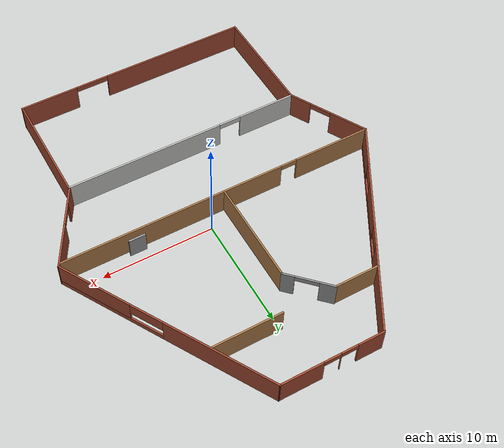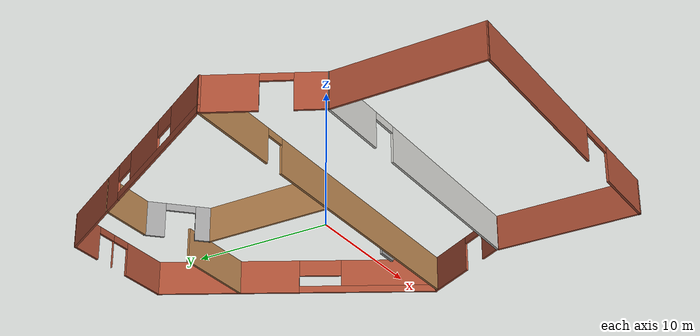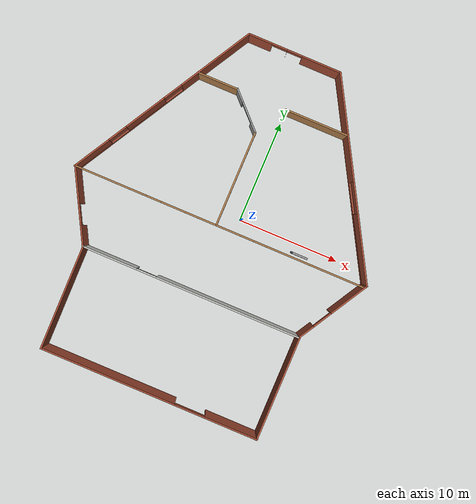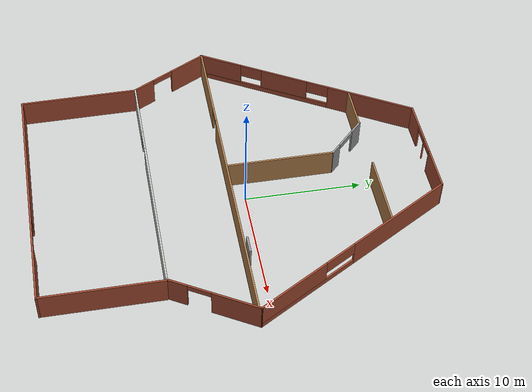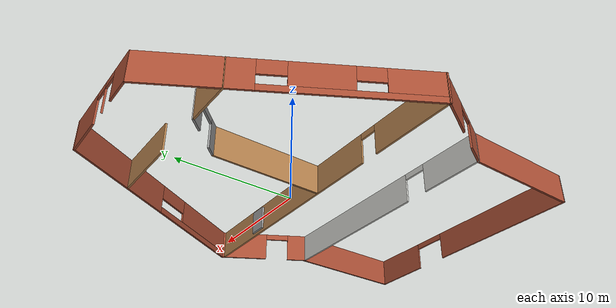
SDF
<?xml version='1.0'?>
<sdf version='1.6'>
  <model name='Delta_Shape_Building'>
    <pose frame=''>-1.45967 -0.955832 0 0 -0 0</pose>
    <link name='Door_7'>
      <collision name='Door_7_Collision'>
        <geometry>
          <box>
            <size>1.5 0.17 2</size>
          </box>
        </geometry>
        <pose frame=''>0 0 1 0 -0 0</pose>
      </collision>
      <visual name='Door_7_Visual'>
        <pose frame=''>0 0 1 0 -0 0</pose>
        <geometry>
          <box>
            <size>1.5 0.17 2</size>
          </box>
        </geometry>
        <material>
          <script>
            <uri>file://media/materials/scripts/gazebo.material</uri>
            <name>Gazebo/Grey</name>
          </script>
        </material>
      </visual>
      <pose frame=''>7.84353 0.055721 0 0 -0 0</pose>
    </link>
    <link name='Wall_11'>
      <pose frame=''>-9.53192 8.31685 0 0 0 -2.0944</pose>
      <visual name='Wall_11_Visual_0'>
        <pose frame=''>-6.20309 0 1.25 0 -0 0</pose>
        <geometry>
          <box>
            <size>7.84382 0.15 2.5</size>
          </box>
        </geometry>
        <material>
          <script>
            <uri>file://media/materials/scripts/gazebo.material</uri>
            <name>Gazebo/Bricks</name>
          </script>
          <ambient>1 1 1 1</ambient>
        </material>
        <meta>
          <layer>0</layer>
        </meta>
      </visual>
      <collision name='Wall_11_Collision_0'>
        <geometry>
          <box>
            <size>7.84382 0.15 2.5</size>
          </box>
        </geometry>
        <pose frame=''>-6.20309 0 1.25 0 -0 0</pose>
      </collision>
      <visual name='Wall_11_Visual_1'>
        <pose frame=''>3.92191 0 0.25 0 -0 0</pose>
        <geometry>
          <box>
            <size>12.4062 0.15 0.5</size>
          </box>
        </geometry>
        <material>
          <script>
            <uri>file://media/materials/scripts/gazebo.material</uri>
            <name>Gazebo/Bricks</name>
          </script>
          <ambient>1 1 1 1</ambient>
        </material>
        <meta>
          <layer>0</layer>
        </meta>
      </visual>
      <collision name='Wall_11_Collision_1'>
        <geometry>
          <box>
            <size>12.4062 0.15 0.5</size>
          </box>
        </geometry>
        <pose frame=''>3.92191 0 0.25 0 -0 0</pose>
      </collision>
      <visual name='Wall_11_Visual_2'>
        <pose frame=''>1.90604 0 1.5 0 -0 0</pose>
        <geometry>
          <box>
            <size>4.37444 0.15 2</size>
          </box>
        </geometry>
        <material>
          <script>
            <uri>file://media/materials/scripts/gazebo.material</uri>
            <name>Gazebo/Bricks</name>
          </script>
          <ambient>1 1 1 1</ambient>
        </material>
        <meta>
          <layer>0</layer>
        </meta>
      </visual>
      <collision name='Wall_11_Collision_2'>
        <geometry>
          <box>
            <size>4.37444 0.15 2</size>
          </box>
        </geometry>
        <pose frame=''>1.90604 0 1.5 0 -0 0</pose>
      </collision>
      <visual name='Wall_11_Visual_3'>
        <pose frame=''>8.10913 0 1.5 0 -0 0</pose>
        <geometry>
          <box>
            <size>4.03174 0.15 2</size>
          </box>
        </geometry>
        <material>
          <script>
            <uri>file://media/materials/scripts/gazebo.material</uri>
            <name>Gazebo/Bricks</name>
          </script>
          <ambient>1 1 1 1</ambient>
        </material>
        <meta>
          <layer>0</layer>
        </meta>
      </visual>
      <collision name='Wall_11_Collision_3'>
        <geometry>
          <box>
            <size>4.03174 0.15 2</size>
          </box>
        </geometry>
        <pose frame=''>8.10913 0 1.5 0 -0 0</pose>
      </collision>
      <visual name='Wall_11_Visual_4'>
        <pose frame=''>-1.28118 0 1.9 0 -0 0</pose>
        <geometry>
          <box>
            <size>2 0.15 1.2</size>
          </box>
        </geometry>
        <material>
          <script>
            <uri>file://media/materials/scripts/gazebo.material</uri>
            <name>Gazebo/Bricks</name>
          </script>
          <ambient>1 1 1 1</ambient>
        </material>
        <meta>
          <layer>0</layer>
        </meta>
      </visual>
      <collision name='Wall_11_Collision_4'>
        <geometry>
          <box>
            <size>2 0.15 1.2</size>
          </box>
        </geometry>
        <pose frame=''>-1.28118 0 1.9 0 -0 0</pose>
      </collision>
      <visual name='Wall_11_Visual_5'>
        <pose frame=''>5.09326 0 1.9 0 -0 0</pose>
        <geometry>
          <box>
            <size>2 0.15 1.2</size>
          </box>
        </geometry>
        <material>
          <script>
            <uri>file://media/materials/scripts/gazebo.material</uri>
            <name>Gazebo/Bricks</name>
          </script>
          <ambient>1 1 1 1</ambient>
        </material>
        <meta>
          <layer>0</layer>
        </meta>
      </visual>
      <collision name='Wall_11_Collision_5'>
        <geometry>
          <box>
            <size>2 0.15 1.2</size>
          </box>
        </geometry>
        <pose frame=''>5.09326 0 1.9 0 -0 0</pose>
      </collision>
    </link>
    <link name='Wall_13'>
      <collision name='Wall_13_Collision'>
        <geometry>
          <box>
            <size>10.21 0.15 2.5</size>
          </box>
        </geometry>
        <pose frame=''>0 0 1.25 0 -0 0</pose>
      </collision>
      <visual name='Wall_13_Visual'>
        <pose frame=''>0 0 1.25 0 -0 0</pose>
        <geometry>
          <box>
            <size>10.21 0.15 2.5</size>
          </box>
        </geometry>
        <material>
          <script>
            <uri>file://media/materials/scripts/gazebo.material</uri>
            <name>Gazebo/Bricks</name>
          </script>
          <ambient>0.996078 0.47451 0.0196078 1</ambient>
        </material>
        <meta>
          <layer>0</layer>
        </meta>
      </visual>
      <pose frame=''>-10.9038 -12.0465 0 0 0 -1.56401</pose>
    </link>
    <link name='Wall_14'>
      <pose frame=''>-0.069701 -17.0764 0 0 -0 0</pose>
      <visual name='Wall_14_Visual_0'>
        <pose frame=''>-4.16097 0 1.25 0 -0 0</pose>
        <geometry>
          <box>
            <size>13.4281 0.15 2.5</size>
          </box>
        </geometry>
        <material>
          <script>
            <uri>file://media/materials/scripts/gazebo.material</uri>
            <name>Gazebo/Bricks</name>
          </script>
          <ambient>0.996078 0.47451 0.0196078 1</ambient>
        </material>
        <meta>
          <layer>0</layer>
        </meta>
      </visual>
      <collision name='Wall_14_Collision_0'>
        <geometry>
          <box>
            <size>13.4281 0.15 2.5</size>
          </box>
        </geometry>
        <pose frame=''>-4.16097 0 1.25 0 -0 0</pose>
      </collision>
      <visual name='Wall_14_Visual_1'>
        <pose frame=''>8.21403 0 1.25 0 -0 0</pose>
        <geometry>
          <box>
            <size>5.32193 0.15 2.5</size>
          </box>
        </geometry>
        <material>
          <script>
            <uri>file://media/materials/scripts/gazebo.material</uri>
            <name>Gazebo/Bricks</name>
          </script>
          <ambient>0.996078 0.47451 0.0196078 1</ambient>
        </material>
        <meta>
          <layer>0</layer>
        </meta>
      </visual>
      <collision name='Wall_14_Collision_1'>
        <geometry>
          <box>
            <size>5.32193 0.15 2.5</size>
          </box>
        </geometry>
        <pose frame=''>8.21403 0 1.25 0 -0 0</pose>
      </collision>
      <visual name='Wall_14_Visual_2'>
        <pose frame=''>4.05307 0 2.25 0 -0 0</pose>
        <geometry>
          <box>
            <size>3 0.15 0.5</size>
          </box>
        </geometry>
        <material>
          <script>
            <uri>file://media/materials/scripts/gazebo.material</uri>
            <name>Gazebo/Bricks</name>
          </script>
          <ambient>0.996078 0.47451 0.0196078 1</ambient>
        </material>
        <meta>
          <layer>0</layer>
        </meta>
      </visual>
      <collision name='Wall_14_Collision_2'>
        <geometry>
          <box>
            <size>3 0.15 0.5</size>
          </box>
        </geometry>
        <pose frame=''>4.05307 0 2.25 0 -0 0</pose>
      </collision>
    </link>
    <link name='Wall_17'>
      <collision name='Wall_17_Collision'>
        <geometry>
          <box>
            <size>10.25 0.15 2.5</size>
          </box>
        </geometry>
        <pose frame=''>0 0 1.25 0 -0 0</pose>
      </collision>
      <visual name='Wall_17_Visual'>
        <pose frame=''>0 0 1.25 0 -0 0</pose>
        <geometry>
          <box>
            <size>10.25 0.15 2.5</size>
          </box>
        </geometry>
        <material>
          <script>
            <uri>file://media/materials/scripts/gazebo.material</uri>
            <name>Gazebo/Bricks</name>
          </script>
          <ambient>0.996078 0.47451 0.0196078 1</ambient>
        </material>
        <meta>
          <layer>0</layer>
        </meta>
      </visual>
      <pose frame=''>10.711 -12.0336 0 0 -0 1.5708</pose>
    </link>
    <link name='Wall_2'>
      <pose frame=''>0.076953 17.0562 0 0 -0 0</pose>
      <visual name='Wall_2_Visual_0'>
        <pose frame=''>-3.43506 0 1.25 0 -0 0</pose>
        <geometry>
          <box>
            <size>2.37988 0.15 2.5</size>
          </box>
        </geometry>
        <material>
          <script>
            <uri>file://media/materials/scripts/gazebo.material</uri>
            <name>Gazebo/Bricks</name>
          </script>
          <ambient>1 1 1 1</ambient>
        </material>
        <meta>
          <layer>0</layer>
        </meta>
      </visual>
      <collision name='Wall_2_Collision_0'>
        <geometry>
          <box>
            <size>2.37988 0.15 2.5</size>
          </box>
        </geometry>
        <pose frame=''>-3.43506 0 1.25 0 -0 0</pose>
      </collision>
      <visual name='Wall_2_Visual_1'>
        <pose frame=''>-0.742869 0 1.25 0 -0 0</pose>
        <geometry>
          <box>
            <size>0.0045 0.15 2.5</size>
          </box>
        </geometry>
        <material>
          <script>
            <uri>file://media/materials/scripts/gazebo.material</uri>
            <name>Gazebo/Bricks</name>
          </script>
          <ambient>1 1 1 1</ambient>
        </material>
        <meta>
          <layer>0</layer>
        </meta>
      </visual>
      <collision name='Wall_2_Collision_1'>
        <geometry>
          <box>
            <size>0.0045 0.15 2.5</size>
          </box>
        </geometry>
        <pose frame=''>-0.742869 0 1.25 0 -0 0</pose>
      </collision>
      <visual name='Wall_2_Visual_2'>
        <pose frame=''>2.69219 0 1.25 0 -0 0</pose>
        <geometry>
          <box>
            <size>3.86562 0.15 2.5</size>
          </box>
        </geometry>
        <material>
          <script>
            <uri>file://media/materials/scripts/gazebo.material</uri>
            <name>Gazebo/Bricks</name>
          </script>
          <ambient>1 1 1 1</ambient>
        </material>
        <meta>
          <layer>0</layer>
        </meta>
      </visual>
      <collision name='Wall_2_Collision_2'>
        <geometry>
          <box>
            <size>3.86562 0.15 2.5</size>
          </box>
        </geometry>
        <pose frame=''>2.69219 0 1.25 0 -0 0</pose>
      </collision>
      <visual name='Wall_2_Visual_3'>
        <pose frame=''>-1.49512 0 2.25 0 -0 0</pose>
        <geometry>
          <box>
            <size>1.5 0.15 0.5</size>
          </box>
        </geometry>
        <material>
          <script>
            <uri>file://media/materials/scripts/gazebo.material</uri>
            <name>Gazebo/Bricks</name>
          </script>
          <ambient>1 1 1 1</ambient>
        </material>
        <meta>
          <layer>0</layer>
        </meta>
      </visual>
      <collision name='Wall_2_Collision_3'>
        <geometry>
          <box>
            <size>1.5 0.15 0.5</size>
          </box>
        </geometry>
        <pose frame=''>-1.49512 0 2.25 0 -0 0</pose>
      </collision>
      <visual name='Wall_2_Visual_4'>
        <pose frame=''>0.009381 0 2.25 0 -0 0</pose>
        <geometry>
          <box>
            <size>1.5 0.15 0.5</size>
          </box>
        </geometry>
        <material>
          <script>
            <uri>file://media/materials/scripts/gazebo.material</uri>
            <name>Gazebo/Bricks</name>
          </script>
          <ambient>1 1 1 1</ambient>
        </material>
        <meta>
          <layer>0</layer>
        </meta>
      </visual>
      <collision name='Wall_2_Collision_4'>
        <geometry>
          <box>
            <size>1.5 0.15 0.5</size>
          </box>
        </geometry>
        <pose frame=''>0.009381 0 2.25 0 -0 0</pose>
      </collision>
    </link>
    <link name='Wall_22'>
      <collision name='Wall_22_Collision'>
        <geometry>
          <box>
            <size>9.25 0.15 2.5</size>
          </box>
        </geometry>
        <pose frame=''>0 0 1.25 0 -0 0</pose>
      </collision>
      <visual name='Wall_22_Visual'>
        <pose frame=''>0 0 1.25 0 -0 0</pose>
        <geometry>
          <box>
            <size>9.25 0.15 2.5</size>
          </box>
        </geometry>
        <material>
          <script>
            <uri>file://media/materials/scripts/gazebo.material</uri>
            <name>Gazebo/Wood</name>
          </script>
          <ambient>1 1 1 1</ambient>
        </material>
        <meta>
          <layer>0</layer>
        </meta>
      </visual>
      <pose frame=''>-0.430431 4.30707 0 0 -0 1.5708</pose>
    </link>
    <link name='Wall_24'>
      <collision name='Wall_24_Collision'>
        <geometry>
          <box>
            <size>4 0.15 2.5</size>
          </box>
        </geometry>
        <pose frame=''>0 0 1.25 0 -0 0</pose>
      </collision>
      <visual name='Wall_24_Visual'>
        <pose frame=''>0 0 1.25 0 -0 0</pose>
        <geometry>
          <box>
            <size>4 0.15 2.5</size>
          </box>
        </geometry>
        <material>
          <script>
            <uri>file://media/materials/scripts/gazebo.material</uri>
            <name>Gazebo/Wood</name>
          </script>
          <ambient>1 1 1 1</ambient>
        </material>
        <meta>
          <layer>0</layer>
        </meta>
      </visual>
      <pose frame=''>-5.50863 11.9558 0 0 -0 0</pose>
    </link>
    <link name='Wall_26'>
      <collision name='Wall_26_Collision'>
        <geometry>
          <box>
            <size>6.25 0.15 2.5</size>
          </box>
        </geometry>
        <pose frame=''>0 0 1.25 0 -0 0</pose>
      </collision>
      <visual name='Wall_26_Visual'>
        <pose frame=''>0 0 1.25 0 -0 0</pose>
        <geometry>
          <box>
            <size>6.25 0.15 2.5</size>
          </box>
        </geometry>
        <material>
          <script>
            <uri>file://media/materials/scripts/gazebo.material</uri>
            <name>Gazebo/Wood</name>
          </script>
          <ambient>1 1 1 1</ambient>
        </material>
        <meta>
          <layer>0</layer>
        </meta>
      </visual>
      <pose frame=''>4.37667 11.9618 0 0 -0 0.001967</pose>
    </link>
    <link name='Wall_28'>
      <pose frame=''>-1.96764 10.4425 0 0 0 -0.785398</pose>
      <visual name='Wall_28_Visual_0'>
        <pose frame=''>-1.55685 0 1.25 0 -0 0</pose>
        <geometry>
          <box>
            <size>1.3863 0.15 2.5</size>
          </box>
        </geometry>
        <material>
          <script>
            <uri>file://media/materials/scripts/gazebo.material</uri>
            <name>Gazebo/Grey</name>
          </script>
          <ambient>1 1 1 1</ambient>
        </material>
        <meta>
          <layer>0</layer>
        </meta>
      </visual>
      <collision name='Wall_28_Collision_0'>
        <geometry>
          <box>
            <size>1.3863 0.15 2.5</size>
          </box>
        </geometry>
        <pose frame=''>-1.55685 0 1.25 0 -0 0</pose>
      </collision>
      <visual name='Wall_28_Visual_1'>
        <pose frame=''>1.69315 0 1.25 0 -0 0</pose>
        <geometry>
          <box>
            <size>1.1137 0.15 2.5</size>
          </box>
        </geometry>
        <material>
          <script>
            <uri>file://media/materials/scripts/gazebo.material</uri>
            <name>Gazebo/Grey</name>
          </script>
          <ambient>1 1 1 1</ambient>
        </material>
        <meta>
          <layer>0</layer>
        </meta>
      </visual>
      <collision name='Wall_28_Collision_1'>
        <geometry>
          <box>
            <size>1.1137 0.15 2.5</size>
          </box>
        </geometry>
        <pose frame=''>1.69315 0 1.25 0 -0 0</pose>
      </collision>
      <visual name='Wall_28_Visual_2'>
        <pose frame=''>0.136296 0 2.25 0 -0 0</pose>
        <geometry>
          <box>
            <size>2 0.15 0.5</size>
          </box>
        </geometry>
        <material>
          <script>
            <uri>file://media/materials/scripts/gazebo.material</uri>
            <name>Gazebo/Grey</name>
          </script>
          <ambient>1 1 1 1</ambient>
        </material>
        <meta>
          <layer>0</layer>
        </meta>
      </visual>
      <collision name='Wall_28_Collision_2'>
        <geometry>
          <box>
            <size>2 0.15 0.5</size>
          </box>
        </geometry>
        <pose frame=''>0.136296 0 2.25 0 -0 0</pose>
      </collision>
    </link>
    <link name='Wall_3'>
      <pose frame=''>9.59442 8.46087 0 0 0 -1.0472</pose>
      <visual name='Wall_3_Visual_0'>
        <pose frame=''>-4.90957 0 1.25 0 -0 0</pose>
        <geometry>
          <box>
            <size>10.1809 0.15 2.5</size>
          </box>
        </geometry>
        <material>
          <script>
            <uri>file://media/materials/scripts/gazebo.material</uri>
            <name>Gazebo/Bricks</name>
          </script>
          <ambient>1 1 1 1</ambient>
        </material>
        <meta>
          <layer>0</layer>
        </meta>
      </visual>
      <collision name='Wall_3_Collision_0'>
        <geometry>
          <box>
            <size>10.1809 0.15 2.5</size>
          </box>
        </geometry>
        <pose frame=''>-4.90957 0 1.25 0 -0 0</pose>
      </collision>
      <visual name='Wall_3_Visual_1'>
        <pose frame=''>5.09043 0 0.25 0 -0 0</pose>
        <geometry>
          <box>
            <size>9.81915 0.15 0.5</size>
          </box>
        </geometry>
        <material>
          <script>
            <uri>file://media/materials/scripts/gazebo.material</uri>
            <name>Gazebo/Bricks</name>
          </script>
          <ambient>1 1 1 1</ambient>
        </material>
        <meta>
          <layer>0</layer>
        </meta>
      </visual>
      <collision name='Wall_3_Collision_1'>
        <geometry>
          <box>
            <size>9.81915 0.15 0.5</size>
          </box>
        </geometry>
        <pose frame=''>5.09043 0 0.25 0 -0 0</pose>
      </collision>
      <visual name='Wall_3_Visual_2'>
        <pose frame=''>6.59043 0 1.5 0 -0 0</pose>
        <geometry>
          <box>
            <size>6.81915 0.15 2</size>
          </box>
        </geometry>
        <material>
          <script>
            <uri>file://media/materials/scripts/gazebo.material</uri>
            <name>Gazebo/Bricks</name>
          </script>
          <ambient>1 1 1 1</ambient>
        </material>
        <meta>
          <layer>0</layer>
        </meta>
      </visual>
      <collision name='Wall_3_Collision_2'>
        <geometry>
          <box>
            <size>6.81915 0.15 2</size>
          </box>
        </geometry>
        <pose frame=''>6.59043 0 1.5 0 -0 0</pose>
      </collision>
      <visual name='Wall_3_Visual_3'>
        <pose frame=''>1.68085 0 1.9 0 -0 0</pose>
        <geometry>
          <box>
            <size>3 0.15 1.2</size>
          </box>
        </geometry>
        <material>
          <script>
            <uri>file://media/materials/scripts/gazebo.material</uri>
            <name>Gazebo/Bricks</name>
          </script>
          <ambient>1 1 1 1</ambient>
        </material>
        <meta>
          <layer>0</layer>
        </meta>
      </visual>
      <collision name='Wall_3_Collision_3'>
        <geometry>
          <box>
            <size>3 0.15 1.2</size>
          </box>
        </geometry>
        <pose frame=''>1.68085 0 1.9 0 -0 0</pose>
      </collision>
    </link>
    <link name='Wall_6'>
      <pose frame=''>12.5944 -3.53358 0 0 0 -2.0944</pose>
      <visual name='Wall_6_Visual_0'>
        <pose frame=''>-1.90074 0 1.25 0 -0 0</pose>
        <geometry>
          <box>
            <size>4.19851 0.15 2.5</size>
          </box>
        </geometry>
        <material>
          <script>
            <uri>file://media/materials/scripts/gazebo.material</uri>
            <name>Gazebo/Bricks</name>
          </script>
          <ambient>1 1 1 1</ambient>
        </material>
        <meta>
          <layer>0</layer>
        </meta>
      </visual>
      <collision name='Wall_6_Collision_0'>
        <geometry>
          <box>
            <size>4.19851 0.15 2.5</size>
          </box>
        </geometry>
        <pose frame=''>-1.90074 0 1.25 0 -0 0</pose>
      </collision>
      <visual name='Wall_6_Visual_1'>
        <pose frame=''>3.09926 0 1.25 0 -0 0</pose>
        <geometry>
          <box>
            <size>1.80149 0.15 2.5</size>
          </box>
        </geometry>
        <material>
          <script>
            <uri>file://media/materials/scripts/gazebo.material</uri>
            <name>Gazebo/Bricks</name>
          </script>
          <ambient>1 1 1 1</ambient>
        </material>
        <meta>
          <layer>0</layer>
        </meta>
      </visual>
      <collision name='Wall_6_Collision_1'>
        <geometry>
          <box>
            <size>1.80149 0.15 2.5</size>
          </box>
        </geometry>
        <pose frame=''>3.09926 0 1.25 0 -0 0</pose>
      </collision>
      <visual name='Wall_6_Visual_2'>
        <pose frame=''>1.19851 0 2.25 0 -0 0</pose>
        <geometry>
          <box>
            <size>2 0.15 0.5</size>
          </box>
        </geometry>
        <material>
          <script>
            <uri>file://media/materials/scripts/gazebo.material</uri>
            <name>Gazebo/Bricks</name>
          </script>
          <ambient>1 1 1 1</ambient>
        </material>
        <meta>
          <layer>0</layer>
        </meta>
      </visual>
      <collision name='Wall_6_Collision_2'>
        <geometry>
          <box>
            <size>2 0.15 0.5</size>
          </box>
        </geometry>
        <pose frame=''>1.19851 0 2.25 0 -0 0</pose>
      </collision>
    </link>
    <link name='Wall_7'>
      <pose frame=''>-0.168075 -6.93273 0 0 -0 3.14159</pose>
      <visual name='Wall_7_Visual_0'>
        <pose frame=''>-3.70627 0 1.25 0 -0 0</pose>
        <geometry>
          <box>
            <size>14.3375 0.15 2.5</size>
          </box>
        </geometry>
        <material>
          <script>
            <uri>file://media/materials/scripts/gazebo.material</uri>
            <name>Gazebo/CeilingTiled</name>
          </script>
          <ambient>1 1 1 1</ambient>
        </material>
        <meta>
          <layer>0</layer>
        </meta>
      </visual>
      <collision name='Wall_7_Collision_0'>
        <geometry>
          <box>
            <size>14.3375 0.15 2.5</size>
          </box>
        </geometry>
        <pose frame=''>-3.70627 0 1.25 0 -0 0</pose>
      </collision>
      <visual name='Wall_7_Visual_1'>
        <pose frame=''>8.16873 0 1.25 0 -0 0</pose>
        <geometry>
          <box>
            <size>5.41254 0.15 2.5</size>
          </box>
        </geometry>
        <material>
          <script>
            <uri>file://media/materials/scripts/gazebo.material</uri>
            <name>Gazebo/CeilingTiled</name>
          </script>
          <ambient>1 1 1 1</ambient>
        </material>
        <meta>
          <layer>0</layer>
        </meta>
      </visual>
      <collision name='Wall_7_Collision_1'>
        <geometry>
          <box>
            <size>5.41254 0.15 2.5</size>
          </box>
        </geometry>
        <pose frame=''>8.16873 0 1.25 0 -0 0</pose>
      </collision>
      <visual name='Wall_7_Visual_2'>
        <pose frame=''>4.46246 0 2.25 0 -0 0</pose>
        <geometry>
          <box>
            <size>2 0.15 0.5</size>
          </box>
        </geometry>
        <material>
          <script>
            <uri>file://media/materials/scripts/gazebo.material</uri>
            <name>Gazebo/CeilingTiled</name>
          </script>
          <ambient>1 1 1 1</ambient>
        </material>
        <meta>
          <layer>0</layer>
        </meta>
      </visual>
      <collision name='Wall_7_Collision_2'>
        <geometry>
          <box>
            <size>2 0.15 0.5</size>
          </box>
        </geometry>
        <pose frame=''>4.46246 0 2.25 0 -0 0</pose>
      </collision>
    </link>
    <link name='Wall_8'>
      <pose frame=''>-12.7431 -3.64183 0 0 -0 2.06544</pose>
      <visual name='Wall_8_Visual_0'>
        <pose frame=''>-2.78222 0 1.25 0 -0 0</pose>
        <geometry>
          <box>
            <size>2.06369 0.15 2.5</size>
          </box>
        </geometry>
        <material>
          <script>
            <uri>file://media/materials/scripts/gazebo.material</uri>
            <name>Gazebo/Bricks</name>
          </script>
          <ambient>1 1 1 1</ambient>
        </material>
        <meta>
          <layer>0</layer>
        </meta>
      </visual>
      <collision name='Wall_8_Collision_0'>
        <geometry>
          <box>
            <size>2.06369 0.15 2.5</size>
          </box>
        </geometry>
        <pose frame=''>-2.78222 0 1.25 0 -0 0</pose>
      </collision>
      <visual name='Wall_8_Visual_1'>
        <pose frame=''>2.03185 0 1.25 0 -0 0</pose>
        <geometry>
          <box>
            <size>3.56444 0.15 2.5</size>
          </box>
        </geometry>
        <material>
          <script>
            <uri>file://media/materials/scripts/gazebo.material</uri>
            <name>Gazebo/Bricks</name>
          </script>
          <ambient>1 1 1 1</ambient>
        </material>
        <meta>
          <layer>0</layer>
        </meta>
      </visual>
      <collision name='Wall_8_Collision_1'>
        <geometry>
          <box>
            <size>3.56444 0.15 2.5</size>
          </box>
        </geometry>
        <pose frame=''>2.03185 0 1.25 0 -0 0</pose>
      </collision>
      <visual name='Wall_8_Visual_2'>
        <pose frame=''>-0.750373 0 2.25 0 -0 0</pose>
        <geometry>
          <box>
            <size>2 0.15 0.5</size>
          </box>
        </geometry>
        <material>
          <script>
            <uri>file://media/materials/scripts/gazebo.material</uri>
            <name>Gazebo/Bricks</name>
          </script>
          <ambient>1 1 1 1</ambient>
        </material>
        <meta>
          <layer>0</layer>
        </meta>
      </visual>
      <collision name='Wall_8_Collision_2'>
        <geometry>
          <box>
            <size>2 0.15 0.5</size>
          </box>
        </geometry>
        <pose frame=''>-0.750373 0 2.25 0 -0 0</pose>
      </collision>
    </link>
    <link name='Wall_9'>
      <pose frame=''>-0.093075 -0.350935 0 0 -0 0</pose>
      <visual name='Wall_9_Visual_0'>
        <pose frame=''>-10.917 0 1.25 0 -0 0</pose>
        <geometry>
          <box>
            <size>7.16603 0.15 2.5</size>
          </box>
        </geometry>
        <material>
          <script>
            <uri>file://media/materials/scripts/gazebo.material</uri>
            <name>Gazebo/Wood</name>
          </script>
          <ambient>1 1 1 1</ambient>
        </material>
        <meta>
          <layer>0</layer>
        </meta>
      </visual>
      <collision name='Wall_9_Collision_0'>
        <geometry>
          <box>
            <size>7.16603 0.15 2.5</size>
          </box>
        </geometry>
        <pose frame=''>-10.917 0 1.25 0 -0 0</pose>
      </collision>
      <visual name='Wall_9_Visual_1'>
        <pose frame=''>4.33301 0 1.25 0 -0 0</pose>
        <geometry>
          <box>
            <size>20.334 0.15 2.5</size>
          </box>
        </geometry>
        <material>
          <script>
            <uri>file://media/materials/scripts/gazebo.material</uri>
            <name>Gazebo/Wood</name>
          </script>
          <ambient>1 1 1 1</ambient>
        </material>
        <meta>
          <layer>0</layer>
        </meta>
      </visual>
      <collision name='Wall_9_Collision_1'>
        <geometry>
          <box>
            <size>20.334 0.15 2.5</size>
          </box>
        </geometry>
        <pose frame=''>4.33301 0 1.25 0 -0 0</pose>
      </collision>
      <visual name='Wall_9_Visual_2'>
        <pose frame=''>-6.58397 0 2.25 0 -0 0</pose>
        <geometry>
          <box>
            <size>1.5 0.15 0.5</size>
          </box>
        </geometry>
        <material>
          <script>
            <uri>file://media/materials/scripts/gazebo.material</uri>
            <name>Gazebo/Wood</name>
          </script>
          <ambient>1 1 1 1</ambient>
        </material>
        <meta>
          <layer>0</layer>
        </meta>
      </visual>
      <collision name='Wall_9_Collision_2'>
        <geometry>
          <box>
            <size>1.5 0.15 0.5</size>
          </box>
        </geometry>
        <pose frame=''>-6.58397 0 2.25 0 -0 0</pose>
      </collision>
    </link>
    <static>1</static>
  </model>
</sdf>
